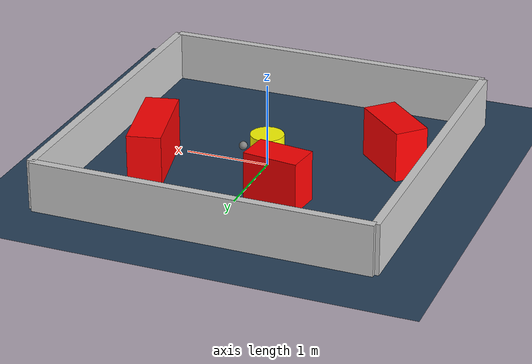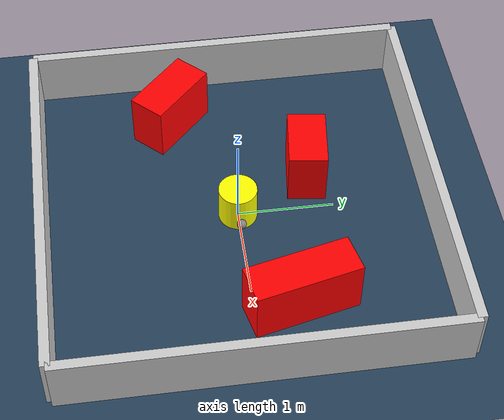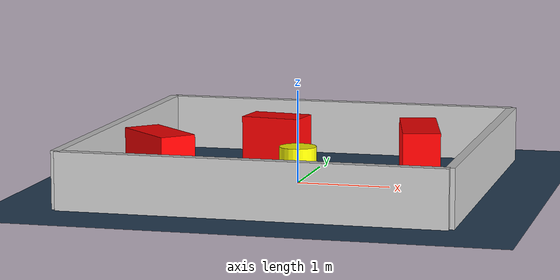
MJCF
<?xml version="1.0" ?>
<mujoco model="generated_environment">
  <option timestep="0.01" integrator="RK4" cone="elliptic"/>
  <default>
    <geom density="1"/>
  </default>
  <asset>
    <texture builtin="gradient" height="3072" rgb1="0.3 0.5 0.7" rgb2="0 0 0" type="skybox" width="512"/>
    <texture builtin="checker" height="300" mark="edge" markrgb="0.8 0.8 0.8" name="groundplane" rgb1="0.2 0.3 0.4" rgb2="0.1 0.2 0.3" type="2d" width="300"/>
    <material name="groundplane" reflectance="0.2" texrepeat="5 5" texture="groundplane" texuniform="true"/>
    <material name="robot" rgba="0.0 1.0 0.0 1"/>
  </asset>
  <worldbody>
    <light dir="0 0 -1" directional="true" pos="0 0 1.5"/>
    <geom condim="4" friction="1.0 0.005 0.001" material="groundplane" name="floor" size="0 0 0.05" type="plane"/>
    <body name="walls">
      <geom name="wall_1" condim="4" pos="-2.0 0.0 0.3" rgba="0.800000011920929 0.800000011920929 0.800000011920929 1.0" size="0.05 2.0 0.3" type="box"/>
      <geom name="wall_2" condim="4" pos="2.0 0.0 0.3" rgba="0.800000011920929 0.800000011920929 0.800000011920929 1.0" size="0.05 2.0 0.3" type="box"/>
      <geom name="wall_3" condim="4" pos="0.0 -2.0 0.3" rgba="0.800000011920929 0.800000011920929 0.800000011920929 1.0" size="2.0 0.05 0.3" type="box"/>
      <geom name="wall_4" condim="4" pos="0.0 2.0 0.3" rgba="0.800000011920929 0.800000011920929 0.800000011920929 1.0" size="2.0 0.05 0.3" type="box"/>
    </body>
    <body name="robot">
      <joint name="joint_x" type="slide" pos="0 0 0" axis="1 0 0"/>
      <joint name="joint_y" type="slide" pos="0 0 0" axis="0 1 0"/>
      <geom name="robot" type="sphere" pos="0.3 0.0 0.2" size="0.05" mass="5." friction="1.0 0.005 0.0001" condim="4" rgba="0.5 0.5 0.5 1.0"/>
      <site name="sensor_ball"/>
    </body>
    <body name="obstacle_movable_1">
      <geom name="obstacle_movable_1" condim="4" pos="0.0 0.0 0.2" euler="0 0 0.0" friction="1.0 0.005 0.001" rgba="1.0 1.0 0.0 1.0" size="0.2 0.2 0.0" type="cylinder" mass="0.1"/>
      <joint type="free"/>
    </body>
    <body name="obstacle_2_static">
      <geom name="obstacle_2_static" condim="4" pos="-0.43941912417516305 0.784609168175215 0.3" euler="0 0 352.75626623772763" friction="1.0 0.005 0.001" rgba="1 0 0 1" size="0.32942097541790183 0.2 0.3" type="box"/>
    </body>
    <body name="obstacle_3_static">
      <geom name="obstacle_3_static" condim="4" pos="-1.36675718172913 -0.5603358811461565 0.3" euler="0 0 136.22306808768954" friction="1.0 0.005 0.001" rgba="1 0 0 1" size="0.4026384294289339 0.2 0.3" type="box"/>
    </body>
    <body name="obstacle_4_static">
      <geom name="obstacle_4_static" condim="4" pos="1.2324735103493762 0.4614423365510041 0.3" euler="0 0 103.23661428717922" friction="1.0 0.005 0.001" rgba="1 0 0 1" size="0.545624702982073 0.2 0.3" type="box"/>
    </body>
  </worldbody>
  <actuator>
    <motor name="actuator_x" joint="joint_x" gear="1" ctrlrange="-1 1"/>
    <motor name="actuator_y" joint="joint_y" gear="1" ctrlrange="-1 1"/>
  </actuator>
</mujoco>
